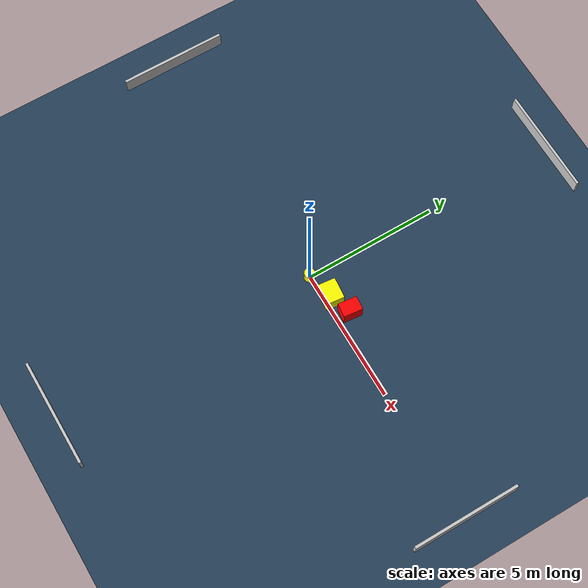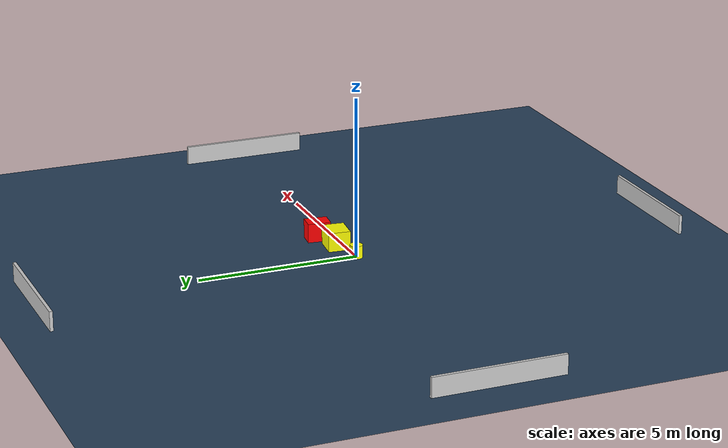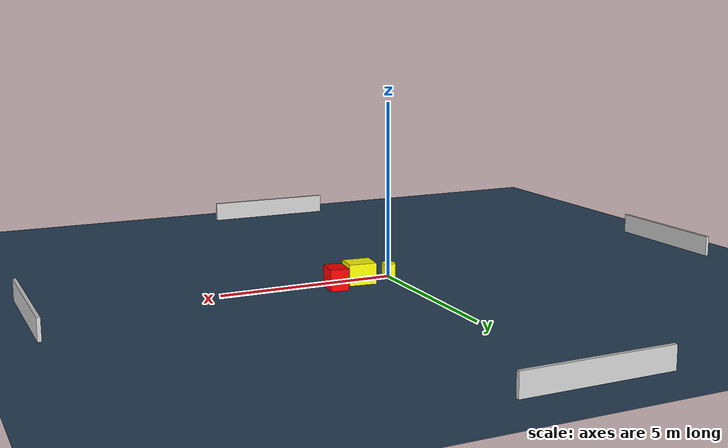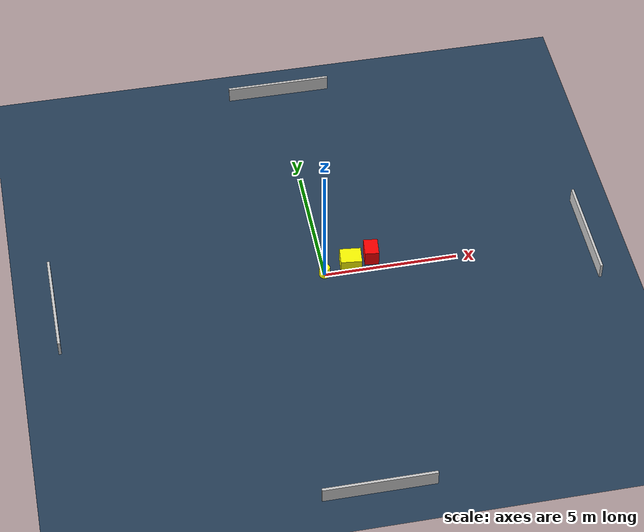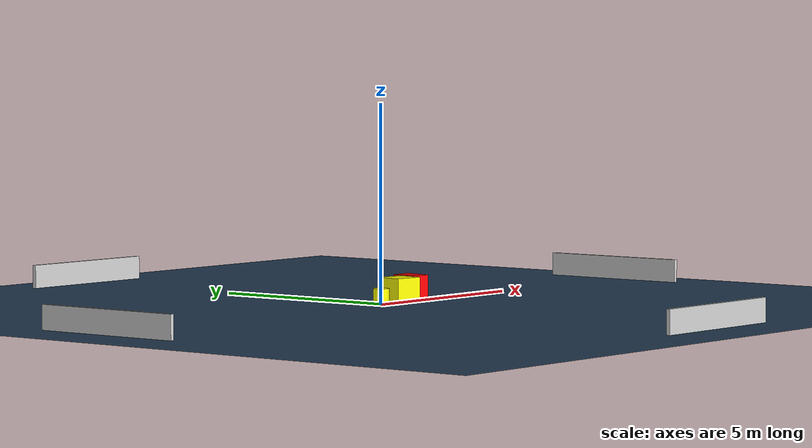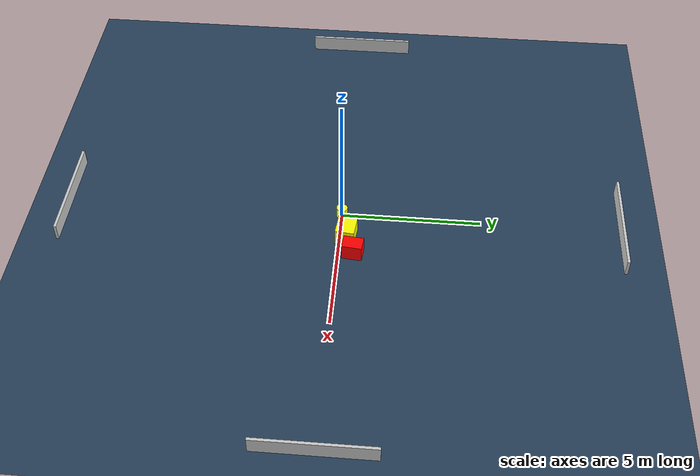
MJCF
<?xml version="1.0" ?>
<mujoco model="generated_environment">
  <option timestep="0.01" integrator="RK4" cone="elliptic"/>
  <default>
    <geom density="1"/>
  </default>
  <asset>
    <texture builtin="gradient" height="3072" name="skybox" rgb1="0.3 0.5 0.7" rgb2="0 0 0" type="skybox" width="512"/>
    <texture builtin="checker" height="300" name="groundplane" rgb1="0.2 0.3 0.4" rgb2="0.1 0.2 0.3" type="2d" width="300"/>
    <material name="groundplane" reflectance="0.2" texrepeat="5 5" texture="groundplane"/>
  </asset>
  <worldbody>
    <light dir="0 0 -1" directional="true" pos="0 0 1.5"/>
    <geom condim="3" friction="0.5 0.005 0.001" material="groundplane" name="floor" pos="0 0 0" size="0 0 0.05" type="plane"/>
    <body name="walls">
      <geom name="wall_1" condim="4" pos="-10.0 0.0 0.3" rgba="0.800000011920929 0.800000011920929 0.800000011920929 1.0" size="0.05 2.0 0.3" type="box"/>
      <geom name="wall_2" condim="4" pos="10.0 0.0 0.3" rgba="0.800000011920929 0.800000011920929 0.800000011920929 1.0" size="0.05 2.0 0.3" type="box"/>
      <geom name="wall_3" condim="4" pos="0.0 -10.0 0.3" rgba="0.800000011920929 0.800000011920929 0.800000011920929 1.0" size="2.0 0.05 0.3" type="box"/>
      <geom name="wall_4" condim="4" pos="0.0 10.0 0.3" rgba="0.800000011920929 0.800000011920929 0.800000011920929 1.0" size="2.0 0.05 0.3" type="box"/>
    </body>
    <body name="robot">
      <joint name="joint_x" type="slide" pos="0 0 0" axis="1 0 0"/>
      <joint name="joint_y" type="slide" pos="0 0 0" axis="0 1 0"/>
      <geom name="robot" type="cylinder" pos="0.0 0.0 0.2" size="0.2 0.2 0.0" mass="5.0" friction="1.0 0.005 0.0001" condim="4" rgba="1.0 1.0 0.0 1.0"/>
    </body>
    <body name="obstacle_1_movable">
      <geom name="obstacle_1_movable" condim="4" pos="1.0286665327717959 0.23788859280585975 0.3" euler="0 0 84.03554176229744" friction="0.0 0.005 0.001" rgba="1.0 1.0 0.0 1.0" size="0.34169027252723694 0.39344364445139457 0.3" type="box" mass="0.1"/>
      <joint type="free"/>
    </body>
    <body name="obstacle_2_static">
      <geom name="obstacle_2_static" condim="4" pos="1.857980363941219 0.527025985116511 0.3" euler="0 0 173.7292187038429" friction="0.0 0.005 0.001" rgba="1.0 0.0 0.0 1.0" size="0.2625685291689921 0.3574044879136764 0.3" type="box"/>
    </body>
  </worldbody>
  <actuator>
    <motor name="actuator_x" joint="joint_x" gear="1" ctrlrange="-1 1"/>
    <motor name="actuator_y" joint="joint_y" gear="1" ctrlrange="-1 1"/>
  </actuator>
</mujoco>
